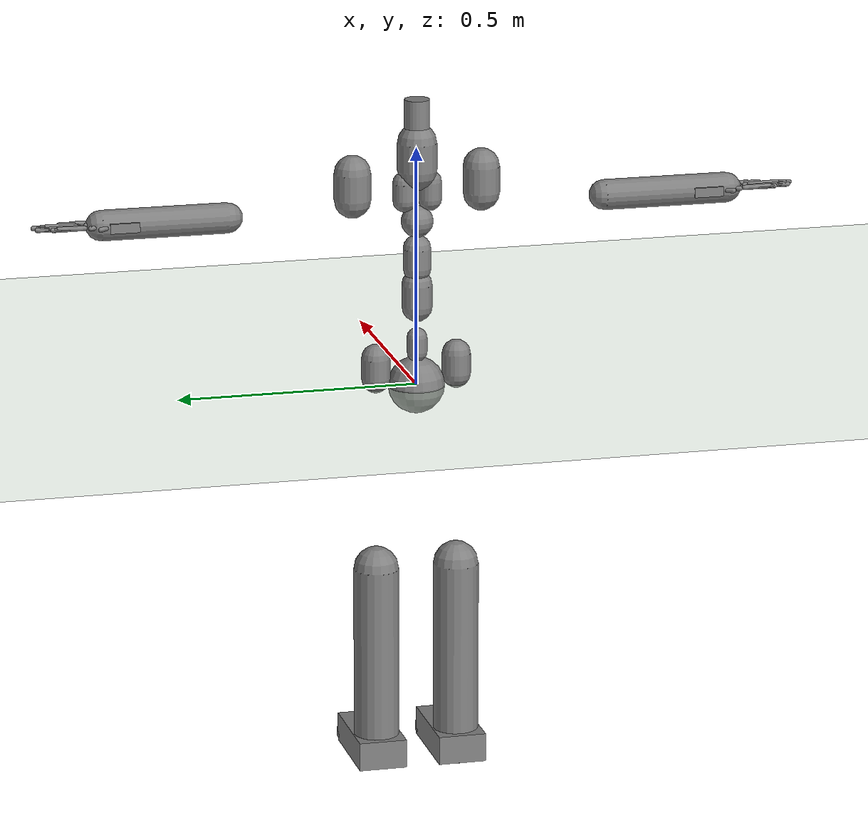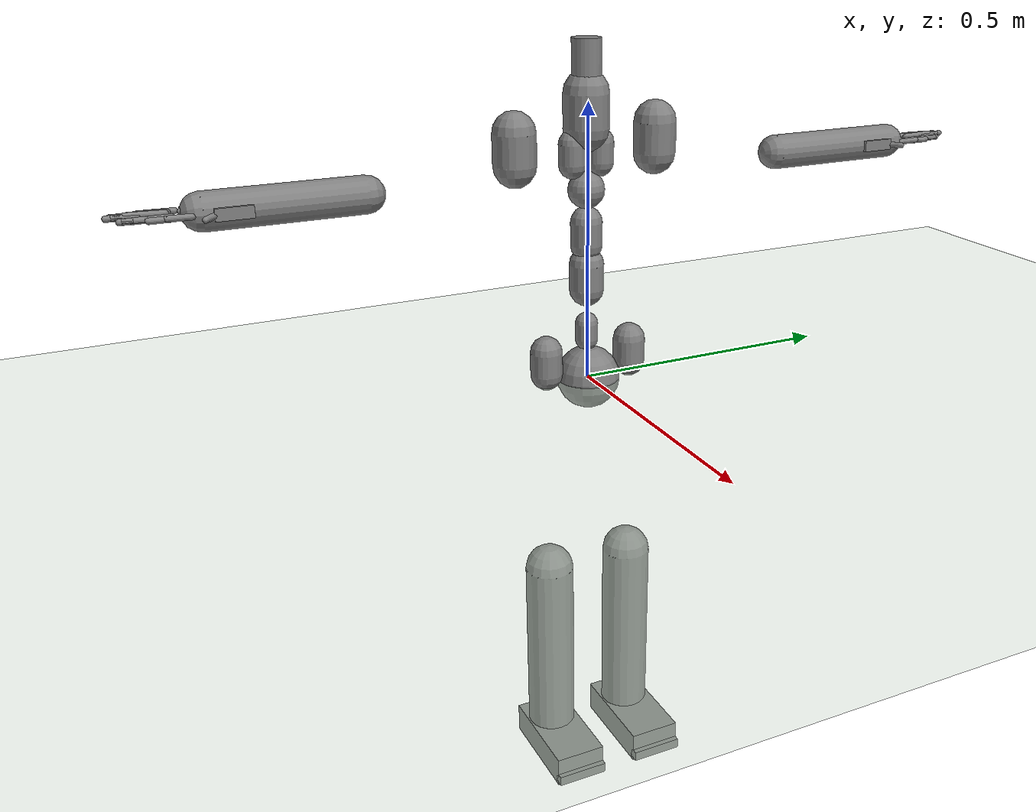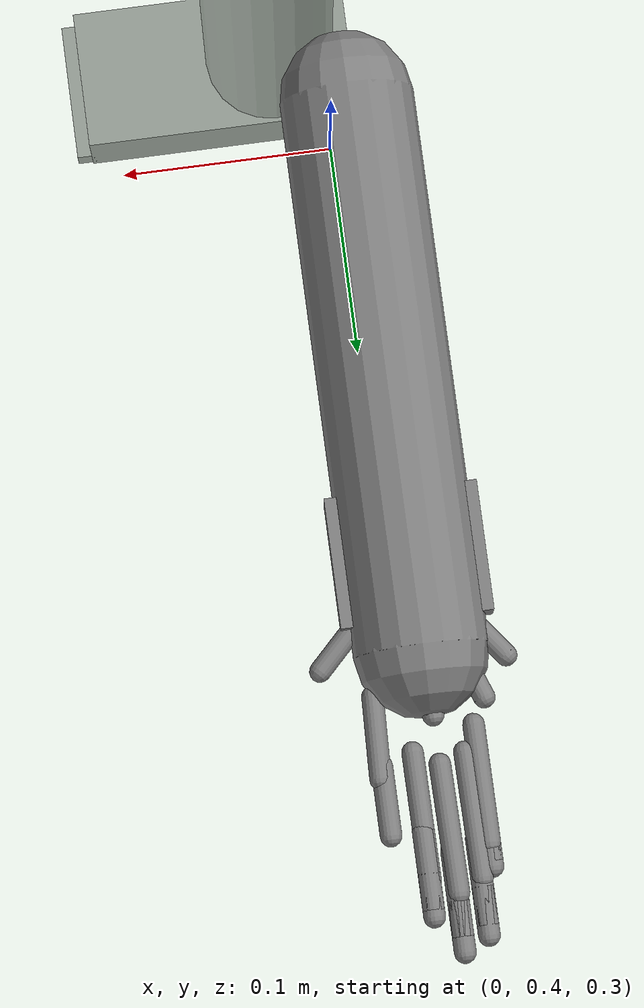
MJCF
<?xml version="1.0" ?>
<mujoco model="humanoid">
  <compiler coordinate="local"/>
  <statistic extent="2" center="0 0 1"/>
  <option timestep="0.00555"/>
  <default>
    <motor ctrlrange="-1 1" ctrllimited="true"/>
    <geom type="capsule" condim="1" friction="1.0 0.05 0.05" solimp=".9 .99 .003" solref=".015 1"/>
    <joint type="hinge" damping="0.1" stiffness="5" armature=".007" limited="true" solimplimit="0 .99 .01"/>
    <site size=".04" group="3"/>
  </default>
  <asset>
    <texture type="skybox" builtin="gradient" rgb1=".4 .5 .6" rgb2="0 0 0" width="100" height="100"/>
    <texture builtin="flat" height="1278" mark="cross" markrgb="1 1 1" name="texgeom" random="0.01" rgb1="0.8 0.6 0.4" rgb2="0.8 0.6 0.4" type="cube" width="127"/>
    <texture builtin="checker" height="100" name="texplane" rgb1="0 0 0" rgb2="0.8 0.8 0.8" type="2d" width="100"/>
    <material name="MatPlane" reflectance="0.5" shininess="1" specular="1" texrepeat="60 60" texture="texplane"/>
    <material name="geom" texture="texgeom" texuniform="true"/>
  </asset>
  <worldbody>
    <light cutoff="100" diffuse="1 1 1" dir="-0 0 -1.3" directional="true" exponent="1" pos="0 0 1.3" specular=".1 .1 .1"/>
    <geom conaffinity="1" condim="3" name="floor" pos="0 0 0" rgba="0.8 0.9 0.8 1" size="100 100 .2" type="plane" material="MatPlane"/>
    <body name="pHipOrigin" pos="0 0 0">
      <freejoint name="pHipOrigin"/>
      <geom type="sphere" contype="1" conaffinity="1" density="4629.6296296296305" size="0.05883" pos="0.0000 0.0000 -0.0000"/>
      <body name="jL5S1" pos="-0.00662915 0 0.05966214">
        <geom type="capsule" contype="1" conaffinity="1" density="1000" fromto="0 0 0.01201 0 0 0.04202" size="0.02101"/>
        <joint name="jL5S1_x" type="hinge" pos="0 0 0" axis="1 0 0" stiffness="500" damping="500" armature="0.02" range="-180.0000 180.0000"/>
        <joint name="jL5S1_y" type="hinge" pos="0 0 0" axis="0 1 0" stiffness="500" damping="500" armature="0.02" range="-180.0000 180.0000"/>
        <joint name="jL5S1_z" type="hinge" pos="0 0 0" axis="0 0 1" stiffness="500" damping="500" armature="0.02" range="-180.0000 180.0000"/>
        <body name="jL4L3" pos="0 0 0.09047320">
          <geom type="capsule" contype="1" conaffinity="1" density="1000" fromto="0 0 0.01809 0 0 0.06333" size="0.03167"/>
          <joint name="jL4L3_x" type="hinge" pos="0 0 0" axis="1 0 0" stiffness="500" damping="500" armature="0.02" range="-180.0000 180.0000"/>
          <joint name="jL4L3_y" type="hinge" pos="0 0 0" axis="0 1 0" stiffness="500" damping="500" armature="0.02" range="-180.0000 180.0000"/>
          <joint name="jL4L3_z" type="hinge" pos="0 0 0" axis="0 0 1" stiffness="500" damping="500" armature="0.02" range="-180.0000 180.0000"/>
          <body name="jL1T12" pos="-0.00063571 0 0.08239878">
            <geom type="capsule" contype="1" conaffinity="1" density="1000" fromto="0 0 0.01648 0 0 0.05768" size="0.02884"/>
            <joint name="jL1T12_x" type="hinge" pos="0 0 0" axis="1 0 0" stiffness="500" damping="500" armature="0.02" range="-180.0000 180.0000"/>
            <joint name="jL1T12_y" type="hinge" pos="0 0 0" axis="0 1 0" stiffness="500" damping="500" armature="0.02" range="-180.0000 180.0000"/>
            <joint name="jL1T12_z" type="hinge" pos="0 0 0" axis="0 0 1" stiffness="500" damping="500" armature="0.02" range="-180.0000 180.0000"/>
            <body name="jT9T8" pos="-0.00063820 0 0.08256188">
              <geom type="sphere" contype="1" conaffinity="1" density="1000" size="0.03303" pos="0.000 0.0000 0.033026"/>
              <joint name="jT9T8_x" type="hinge" pos="0 0 0" axis="1 0 0" stiffness="500" damping="500" armature="0.02" range="-180.0000 180.0000"/>
              <joint name="jT9T8_y" type="hinge" pos="0 0 0" axis="0 1 0" stiffness="500" damping="500" armature="0.02" range="-180.0000 180.0000"/>
              <joint name="jT9T8_z" type="hinge" pos="0 0 0" axis="0 0 1" stiffness="500" damping="500" armature="0.02" range="-180.0000 180.0000"/>
              <body name="jT1C7" pos="0 0 0.11602199">
                <geom type="capsule" contype="1" conaffinity="1" density="1000" fromto="0 0 0.02320 0 0 0.08122" size="0.04061"/>
                <joint name="jT1C7_x" type="hinge" pos="0 0 0" axis="1 0 0" stiffness="500" damping="500" armature="0.02" range="-180.0000 180.0000"/>
                <joint name="jT1C7_y" type="hinge" pos="0 0 0" axis="0 1 0" stiffness="500" damping="500" armature="0.02" range="-180.0000 180.0000"/>
                <joint name="jT1C7_z" type="hinge" pos="0 0 0" axis="0 0 1" stiffness="500" damping="500" armature="0.02" range="-180.0000 180.0000"/>
                <body name="jC1Head" pos="0.00101480 0 0.08601703">
                  <geom type="cylinder" contype="1" conaffinity="1" density="1000" fromto="0 0 0 0 0 0.08602" size="0.02581"/>
                  <joint name="jC1Head_x" type="hinge" pos="0 0 0" axis="1 0 0" stiffness="500" damping="500" armature="0.02" range="-180.0000 180.0000"/>
                  <joint name="jC1Head_y" type="hinge" pos="0 0 0" axis="0 1 0" stiffness="500" damping="500" armature="0.02" range="-180.0000 180.0000"/>
                  <joint name="jC1Head_z" type="hinge" pos="0 0 0" axis="0 0 1" stiffness="500" damping="500" armature="0.02" range="-180.0000 180.0000"/>
                </body>
              </body>
              <body name="jRightT4Shoulder" pos="0 -0.02661566 0.06489483">
                <geom type="capsule" contype="1" conaffinity="1" density="1000" fromto="0 0 0.01403 0 0 0.04910" size="0.02455"/>
                <joint name="jRightT4Shoulder_x" type="hinge" pos="0 0 0" axis="1 0 0" stiffness="500" damping="500" armature="0.02" range="-180.0000 180.0000"/>
                <joint name="jRightT4Shoulder_y" type="hinge" pos="0 0 0" axis="0 1 0" stiffness="500" damping="500" armature="0.02" range="-180.0000 180.0000"/>
                <joint name="jRightT4Shoulder_z" type="hinge" pos="0 0 0" axis="0 0 1" stiffness="500" damping="500" armature="0.02" range="-180.0000 180.0000"/>
                <body name="jRightShoulder" pos="0 -0.10811466 0">
                  <geom type="capsule" contype="1" conaffinity="1" density="1000" fromto="0 0 0.02162 0 0 0.07568" size="0.03784"/>
                  <joint name="jRightShoulder_x" type="hinge" pos="0 0 0" axis="1 0 0" stiffness="500" damping="500" armature="0.02" range="-180.0000 180.0000"/>
                  <joint name="jRightShoulder_y" type="hinge" pos="0 0 0" axis="0 1 0" stiffness="500" damping="500" armature="0.02" range="-180.0000 180.0000"/>
                  <joint name="jRightShoulder_z" type="hinge" pos="0 0 0" axis="0 0 1" stiffness="500" damping="500" armature="0.02" range="-180.0000 180.0000"/>
                  <body name="jRightElbow" pos="0 -0.25998172 0">
                    <geom type="capsule" contype="1" conaffinity="1" density="1000" fromto="0 0 0 0.00000000 -0.25998172 0.00000000" size="0.03120"/>
                    <joint name="jRightElbow_x" type="hinge" pos="0 0 0" axis="1 0 0" stiffness="500" damping="500" armature="0.02" range="-180.0000 180.0000"/>
                    <joint name="jRightElbow_y" type="hinge" pos="0 0 0" axis="0 1 0" stiffness="500" damping="500" armature="0.02" range="-180.0000 180.0000"/>
                    <joint name="jRightElbow_z" type="hinge" pos="0 0 0" axis="0 0 1" stiffness="500" damping="500" armature="0.02" range="-180.0000 180.0000"/>
                    <body name="jRightWrist" pos="0.00008662 -0.21521773 0">
                      <geom density="1000" type="box" pos="0 0 0" size="0.035 0.03 0.01" quat="1.0000 0.0000 0.0000 0.0000"/>
                      <joint name="jRightWrist_x" type="hinge" pos="0 0 0" axis="1 0 0" stiffness="500" damping="500" armature="0.02" range="-180.0000 180.0000"/>
                      <joint name="jRightWrist_y" type="hinge" pos="0 0 0" axis="0 1 0" stiffness="500" damping="500" armature="0.02" range="-180.0000 180.0000"/>
                      <joint name="jRightWrist_z" type="hinge" pos="0 0 0" axis="0 0 1" stiffness="500" damping="500" armature="0.02" range="-180.0000 180.0000"/>
                      <body name="jRightFirstCMC" pos="0.02382056 -0.02283335 -0.00107874">
                        <geom type="capsule" contype="1" conaffinity="1" density="1000" fromto="0 0 0 0.02382056 -0.02283335 -0.00107874" size="0.005"/>
                        <joint name="jRightFirstCMC_x" type="hinge" pos="0 0 0" axis="1 0 0" stiffness="500" damping="500" armature="0.02" range="-180.0000 180.0000"/>
                        <joint name="jRightFirstCMC_y" type="hinge" pos="0 0 0" axis="0 1 0" stiffness="500" damping="500" armature="0.02" range="-180.0000 180.0000"/>
                        <joint name="jRightFirstCMC_z" type="hinge" pos="0 0 0" axis="0 0 1" stiffness="500" damping="500" armature="0.02" range="-180.0000 180.0000"/>
                        <body name="jRightFirstMCP" pos="0.00134190 -0.03786742 0.00080014">
                          <geom type="capsule" contype="1" conaffinity="1" density="1000" fromto="0 0 0 0.00134190 -0.03786742 0.00080014" size="0.005"/>
                          <joint name="jRightFirstMCP_x" type="hinge" pos="0 0 0" axis="1 0 0" stiffness="500" damping="500" armature="0.02" range="-180.0000 180.0000"/>
                          <joint name="jRightFirstMCP_y" type="hinge" pos="0 0 0" axis="0 1 0" stiffness="500" damping="500" armature="0.02" range="-180.0000 180.0000"/>
                          <joint name="jRightFirstMCP_z" type="hinge" pos="0 0 0" axis="0 0 1" stiffness="500" damping="500" armature="0.02" range="-180.0000 180.0000"/>
                          <body name="jRightIP" pos="0 -0.03193852 0">
                            <geom type="capsule" contype="1" conaffinity="1" density="1000" fromto="0 0 0 0.00000000 -0.03193852 0.00000000" size="0.005"/>
                            <joint name="jRightIP_x" type="hinge" pos="0 0 0" axis="1 0 0" stiffness="500" damping="500" armature="0.02" range="-180.0000 180.0000"/>
                            <joint name="jRightIP_y" type="hinge" pos="0 0 0" axis="0 1 0" stiffness="500" damping="500" armature="0.02" range="-180.0000 180.0000"/>
                            <joint name="jRightIP_z" type="hinge" pos="0 0 0" axis="0 0 1" stiffness="500" damping="500" armature="0.02" range="-180.0000 180.0000"/>
                          </body>
                        </body>
                      </body>
                      <body name="jRightSecondCMC" pos="0.01017313 -0.02972267 -0.00051844">
                        <geom type="capsule" contype="1" conaffinity="1" density="1000" fromto="0 0 0 0.01017313 -0.02972267 -0.00051844" size="0.005"/>
                        <joint name="jRightSecondCMC_x" type="hinge" pos="0 0 0" axis="1 0 0" stiffness="500" damping="500" armature="0.02" range="-180.0000 180.0000"/>
                        <joint name="jRightSecondCMC_y" type="hinge" pos="0 0 0" axis="0 1 0" stiffness="500" damping="500" armature="0.02" range="-180.0000 180.0000"/>
                        <joint name="jRightSecondCMC_z" type="hinge" pos="0 0 0" axis="0 0 1" stiffness="500" damping="500" armature="0.02" range="-180.0000 180.0000"/>
                        <body name="jRightSecondMCP" pos="-0.00036993 -0.05900183 -0.00061204">
                          <geom type="capsule" contype="1" conaffinity="1" density="1000" fromto="0 0 0 -0.00036993 -0.05900183 -0.00061204" size="0.005"/>
                          <joint name="jRightSecondMCP_x" type="hinge" pos="0 0 0" axis="1 0 0" stiffness="500" damping="500" armature="0.02" range="-180.0000 180.0000"/>
                          <joint name="jRightSecondMCP_y" type="hinge" pos="0 0 0" axis="0 1 0" stiffness="500" damping="500" armature="0.02" range="-180.0000 180.0000"/>
                          <joint name="jRightSecondMCP_z" type="hinge" pos="0 0 0" axis="0 0 1" stiffness="500" damping="500" armature="0.02" range="-180.0000 180.0000"/>
                          <body name="jRightSecondPIP" pos="0 -0.03589189 0">
                            <geom type="capsule" contype="1" conaffinity="1" density="1000" fromto="0 0 0 0.00000000 -0.03589189 0.00000000" size="0.005"/>
                            <joint name="jRightSecondPIP_x" type="hinge" pos="0 0 0" axis="1 0 0" stiffness="500" damping="500" armature="0.02" range="-180.0000 180.0000"/>
                            <joint name="jRightSecondPIP_y" type="hinge" pos="0 0 0" axis="0 1 0" stiffness="500" damping="500" armature="0.02" range="-180.0000 180.0000"/>
                            <joint name="jRightSecondPIP_z" type="hinge" pos="0 0 0" axis="0 0 1" stiffness="500" damping="500" armature="0.02" range="-180.0000 180.0000"/>
                            <body name="jRightSecondDIP" pos="0 -0.01957870 0">
                              <geom type="capsule" contype="1" conaffinity="1" density="1000" fromto="0 0 0 0.00000000 -0.01957870 0.00000000" size="0.005"/>
                              <joint name="jRightSecondDIP_x" type="hinge" pos="0 0 0" axis="1 0 0" stiffness="500" damping="500" armature="0.02" range="-180.0000 180.0000"/>
                              <joint name="jRightSecondDIP_y" type="hinge" pos="0 0 0" axis="0 1 0" stiffness="500" damping="500" armature="0.02" range="-180.0000 180.0000"/>
                              <joint name="jRightSecondDIP_z" type="hinge" pos="0 0 0" axis="0 0 1" stiffness="500" damping="500" armature="0.02" range="-180.0000 180.0000"/>
                            </body>
                          </body>
                        </body>
                      </body>
                      <body name="jRightThirdCMC" pos="-0.00068021 -0.03678439 0.00154647">
                        <geom type="capsule" contype="1" conaffinity="1" density="1000" fromto="0 0 0 -0.00068021 -0.03678439 0.00154647" size="0.005"/>
                        <joint name="jRightThirdCMC_x" type="hinge" pos="0 0 0" axis="1 0 0" stiffness="500" damping="500" armature="0.02" range="-180.0000 180.0000"/>
                        <joint name="jRightThirdCMC_y" type="hinge" pos="0 0 0" axis="0 1 0" stiffness="500" damping="500" armature="0.02" range="-180.0000 180.0000"/>
                        <joint name="jRightThirdCMC_z" type="hinge" pos="0 0 0" axis="0 0 1" stiffness="500" damping="500" armature="0.02" range="-180.0000 180.0000"/>
                        <body name="jRightThirdMCP" pos="-0.00071159 -0.05895533 0.00160395">
                          <geom type="capsule" contype="1" conaffinity="1" density="1000" fromto="0 0 0 -0.00071159 -0.05895533 0.00160395" size="0.005"/>
                          <joint name="jRightThirdMCP_x" type="hinge" pos="0 0 0" axis="1 0 0" stiffness="500" damping="500" armature="0.02" range="-180.0000 180.0000"/>
                          <joint name="jRightThirdMCP_y" type="hinge" pos="0 0 0" axis="0 1 0" stiffness="500" damping="500" armature="0.02" range="-180.0000 180.0000"/>
                          <joint name="jRightThirdMCP_z" type="hinge" pos="0 0 0" axis="0 0 1" stiffness="500" damping="500" armature="0.02" range="-180.0000 180.0000"/>
                          <body name="jRightThirdPIP" pos="0 -0.03923096 0">
                            <geom type="capsule" contype="1" conaffinity="1" density="1000" fromto="0 0 0 0.00000000 -0.03923096 0.00000000" size="0.005"/>
                            <joint name="jRightThirdPIP_x" type="hinge" pos="0 0 0" axis="1 0 0" stiffness="500" damping="500" armature="0.02" range="-180.0000 180.0000"/>
                            <joint name="jRightThirdPIP_y" type="hinge" pos="0 0 0" axis="0 1 0" stiffness="500" damping="500" armature="0.02" range="-180.0000 180.0000"/>
                            <joint name="jRightThirdPIP_z" type="hinge" pos="0 0 0" axis="0 0 1" stiffness="500" damping="500" armature="0.02" range="-180.0000 180.0000"/>
                            <body name="jRightThirdDIP" pos="0 -0.02320820 0">
                              <geom type="capsule" contype="1" conaffinity="1" density="1000" fromto="0 0 0 0.00000000 -0.02320820 0.00000000" size="0.005"/>
                              <joint name="jRightThirdDIP_x" type="hinge" pos="0 0 0" axis="1 0 0" stiffness="500" damping="500" armature="0.02" range="-180.0000 180.0000"/>
                              <joint name="jRightThirdDIP_y" type="hinge" pos="0 0 0" axis="0 1 0" stiffness="500" damping="500" armature="0.02" range="-180.0000 180.0000"/>
                              <joint name="jRightThirdDIP_z" type="hinge" pos="0 0 0" axis="0 0 1" stiffness="500" damping="500" armature="0.02" range="-180.0000 180.0000"/>
                            </body>
                          </body>
                        </body>
                      </body>
                      <body name="jRightFourthCMC" pos="-0.01232893 -0.03433810 0.00080827">
                        <geom type="capsule" contype="1" conaffinity="1" density="1000" fromto="0 0 0 -0.01232893 -0.03433810 0.00080827" size="0.005"/>
                        <joint name="jRightFourthCMC_x" type="hinge" pos="0 0 0" axis="1 0 0" stiffness="500" damping="500" armature="0.02" range="-180.0000 180.0000"/>
                        <joint name="jRightFourthCMC_y" type="hinge" pos="0 0 0" axis="0 1 0" stiffness="500" damping="500" armature="0.02" range="-180.0000 180.0000"/>
                        <joint name="jRightFourthCMC_z" type="hinge" pos="0 0 0" axis="0 0 1" stiffness="500" damping="500" armature="0.02" range="-180.0000 180.0000"/>
                        <body name="jRightFourthMCP" pos="-0.00041919 -0.05745450 0.00090266">
                          <geom type="capsule" contype="1" conaffinity="1" density="1000" fromto="0 0 0 -0.00041919 -0.05745450 0.00090266" size="0.005"/>
                          <joint name="jRightFourthMCP_x" type="hinge" pos="0 0 0" axis="1 0 0" stiffness="500" damping="500" armature="0.02" range="-180.0000 180.0000"/>
                          <joint name="jRightFourthMCP_y" type="hinge" pos="0 0 0" axis="0 1 0" stiffness="500" damping="500" armature="0.02" range="-180.0000 180.0000"/>
                          <joint name="jRightFourthMCP_z" type="hinge" pos="0 0 0" axis="0 0 1" stiffness="500" damping="500" armature="0.02" range="-180.0000 180.0000"/>
                          <body name="jRightFourthPIP" pos="0 -0.03938530 0">
                            <geom type="capsule" contype="1" conaffinity="1" density="1000" fromto="0 0 0 0.00000000 -0.03938530 0.00000000" size="0.005"/>
                            <joint name="jRightFourthPIP_x" type="hinge" pos="0 0 0" axis="1 0 0" stiffness="500" damping="500" armature="0.02" range="-180.0000 180.0000"/>
                            <joint name="jRightFourthPIP_y" type="hinge" pos="0 0 0" axis="0 1 0" stiffness="500" damping="500" armature="0.02" range="-180.0000 180.0000"/>
                            <joint name="jRightFourthPIP_z" type="hinge" pos="0 0 0" axis="0 0 1" stiffness="500" damping="500" armature="0.02" range="-180.0000 180.0000"/>
                            <body name="jRightFourthDIP" pos="0 -0.02209246 0">
                              <geom type="capsule" contype="1" conaffinity="1" density="1000" fromto="0 0 0 0.00000000 -0.02209246 0.00000000" size="0.005"/>
                              <joint name="jRightFourthDIP_x" type="hinge" pos="0 0 0" axis="1 0 0" stiffness="500" damping="500" armature="0.02" range="-180.0000 180.0000"/>
                              <joint name="jRightFourthDIP_y" type="hinge" pos="0 0 0" axis="0 1 0" stiffness="500" damping="500" armature="0.02" range="-180.0000 180.0000"/>
                              <joint name="jRightFourthDIP_z" type="hinge" pos="0 0 0" axis="0 0 1" stiffness="500" damping="500" armature="0.02" range="-180.0000 180.0000"/>
                            </body>
                          </body>
                        </body>
                      </body>
                      <body name="jRightFifthCMC" pos="-0.01845730 -0.02571814 0.00050734">
                        <geom type="capsule" contype="1" conaffinity="1" density="1000" fromto="0 0 0 -0.01845730 -0.02571814 0.00050734" size="0.005"/>
                        <joint name="jRightFifthCMC_x" type="hinge" pos="0 0 0" axis="1 0 0" stiffness="500" damping="500" armature="0.02" range="-180.0000 180.0000"/>
                        <joint name="jRightFifthCMC_y" type="hinge" pos="0 0 0" axis="0 1 0" stiffness="500" damping="500" armature="0.02" range="-180.0000 180.0000"/>
                        <joint name="jRightFifthCMC_z" type="hinge" pos="0 0 0" axis="0 0 1" stiffness="500" damping="500" armature="0.02" range="-180.0000 180.0000"/>
                        <body name="jRightFifthMCP" pos="-0.00000803 -0.05437287 0.00074824">
                          <geom type="capsule" contype="1" conaffinity="1" density="1000" fromto="0 0 0 -0.00000803 -0.05437287 0.00074824" size="0.005"/>
                          <joint name="jRightFifthMCP_x" type="hinge" pos="0 0 0" axis="1 0 0" stiffness="500" damping="500" armature="0.02" range="-180.0000 180.0000"/>
                          <joint name="jRightFifthMCP_y" type="hinge" pos="0 0 0" axis="0 1 0" stiffness="500" damping="500" armature="0.02" range="-180.0000 180.0000"/>
                          <joint name="jRightFifthMCP_z" type="hinge" pos="0 0 0" axis="0 0 1" stiffness="500" damping="500" armature="0.02" range="-180.0000 180.0000"/>
                          <body name="jRightFifthPIP" pos="0 -0.03120765 0">
                            <geom type="capsule" contype="1" conaffinity="1" density="1000" fromto="0 0 0 0.00000000 -0.03120765 0.00000000" size="0.005"/>
                            <joint name="jRightFifthPIP_x" type="hinge" pos="0 0 0" axis="1 0 0" stiffness="500" damping="500" armature="0.02" range="-180.0000 180.0000"/>
                            <joint name="jRightFifthPIP_y" type="hinge" pos="0 0 0" axis="0 1 0" stiffness="500" damping="500" armature="0.02" range="-180.0000 180.0000"/>
                            <joint name="jRightFifthPIP_z" type="hinge" pos="0 0 0" axis="0 0 1" stiffness="500" damping="500" armature="0.02" range="-180.0000 180.0000"/>
                            <body name="jRightFifthDIP" pos="0 -0.01690737 0">
                              <geom type="capsule" contype="1" conaffinity="1" density="1000" fromto="0 0 0 0.00000000 -0.01690737 0.00000000" size="0.005"/>
                              <joint name="jRightFifthDIP_x" type="hinge" pos="0 0 0" axis="1 0 0" stiffness="500" damping="500" armature="0.02" range="-180.0000 180.0000"/>
                              <joint name="jRightFifthDIP_y" type="hinge" pos="0 0 0" axis="0 1 0" stiffness="500" damping="500" armature="0.02" range="-180.0000 180.0000"/>
                              <joint name="jRightFifthDIP_z" type="hinge" pos="0 0 0" axis="0 0 1" stiffness="500" damping="500" armature="0.02" range="-180.0000 180.0000"/>
                            </body>
                          </body>
                        </body>
                      </body>
                    </body>
                  </body>
                </body>
              </body>
              <body name="jLeftT4Shoulder" pos="0 0.02659525 0.06484507">
                <geom type="capsule" contype="1" conaffinity="1" density="1000" fromto="0 0 0.01402 0 0 0.04906" size="0.02453"/>
                <joint name="jLeftT4Shoulder_x" type="hinge" pos="0 0 0" axis="1 0 0" stiffness="500" damping="500" armature="0.02" range="-180.0000 180.0000"/>
                <joint name="jLeftT4Shoulder_y" type="hinge" pos="0 0 0" axis="0 1 0" stiffness="500" damping="500" armature="0.02" range="-180.0000 180.0000"/>
                <joint name="jLeftT4Shoulder_z" type="hinge" pos="0 0 0" axis="0 0 1" stiffness="500" damping="500" armature="0.02" range="-180.0000 180.0000"/>
                <body name="jLeftShoulder" pos="0 0.10854474 0">
                  <geom type="capsule" contype="1" conaffinity="1" density="1000" fromto="0 0 0.02171 0 0 0.07598" size="0.03799"/>
                  <joint name="jLeftShoulder_x" type="hinge" pos="0 0 0" axis="1 0 0" stiffness="500" damping="500" armature="0.02" range="-180.0000 180.0000"/>
                  <joint name="jLeftShoulder_y" type="hinge" pos="0 0 0" axis="0 1 0" stiffness="500" damping="500" armature="0.02" range="-180.0000 180.0000"/>
                  <joint name="jLeftShoulder_z" type="hinge" pos="0 0 0" axis="0 0 1" stiffness="500" damping="500" armature="0.02" range="-180.0000 180.0000"/>
                  <body name="jLeftElbow" pos="0 0.25955233 0">
                    <geom type="capsule" contype="1" conaffinity="1" density="1000" fromto="0 0 0 0.00000000 0.25955233 0.00000000" size="0.03115"/>
                    <joint name="jLeftElbow_x" type="hinge" pos="0 0 0" axis="1 0 0" stiffness="500" damping="500" armature="0.02" range="-180.0000 180.0000"/>
                    <joint name="jLeftElbow_y" type="hinge" pos="0 0 0" axis="0 1 0" stiffness="500" damping="500" armature="0.02" range="-180.0000 180.0000"/>
                    <joint name="jLeftElbow_z" type="hinge" pos="0 0 0" axis="0 0 1" stiffness="500" damping="500" armature="0.02" range="-180.0000 180.0000"/>
                    <body name="jLeftWrist" pos="0.00008698 0.21610794 0">
                      <geom density="1000" type="box" pos="0 0 0" size="0.035 0.03 0.01" quat="1.0000 0.0000 0.0000 0.0000"/>
                      <joint name="jLeftWrist_x" type="hinge" pos="0 0 0" axis="1 0 0" stiffness="500" damping="500" armature="0.02" range="-180.0000 180.0000"/>
                      <joint name="jLeftWrist_y" type="hinge" pos="0 0 0" axis="0 1 0" stiffness="500" damping="500" armature="0.02" range="-180.0000 180.0000"/>
                      <joint name="jLeftWrist_z" type="hinge" pos="0 0 0" axis="0 0 1" stiffness="500" damping="500" armature="0.02" range="-180.0000 180.0000"/>
                      <body name="jLeftFirstCMC" pos="0.02331472 0.02336978 -0.00104349">
                        <geom type="capsule" contype="1" conaffinity="1" density="1000" fromto="0 0 0 0.02331472 0.02336978 -0.00104349" size="0.005"/>
                        <joint name="jLeftFirstCMC_x" type="hinge" pos="0 0 0" axis="1 0 0" stiffness="500" damping="500" armature="0.02" range="-180.0000 180.0000"/>
                        <joint name="jLeftFirstCMC_y" type="hinge" pos="0 0 0" axis="0 1 0" stiffness="500" damping="500" armature="0.02" range="-180.0000 180.0000"/>
                        <joint name="jLeftFirstCMC_z" type="hinge" pos="0 0 0" axis="0 0 1" stiffness="500" damping="500" armature="0.02" range="-180.0000 180.0000"/>
                        <body name="jLeftFirstMCP" pos="0.00132897 0.03786657 0.00077976">
                          <geom type="capsule" contype="1" conaffinity="1" density="1000" fromto="0 0 0 0.00132897 0.03786657 0.00077976" size="0.005"/>
                          <joint name="jLeftFirstMCP_x" type="hinge" pos="0 0 0" axis="1 0 0" stiffness="500" damping="500" armature="0.02" range="-180.0000 180.0000"/>
                          <joint name="jLeftFirstMCP_y" type="hinge" pos="0 0 0" axis="0 1 0" stiffness="500" damping="500" armature="0.02" range="-180.0000 180.0000"/>
                          <joint name="jLeftFirstMCP_z" type="hinge" pos="0 0 0" axis="0 0 1" stiffness="500" damping="500" armature="0.02" range="-180.0000 180.0000"/>
                          <body name="jLeftIP" pos="0 0.03193852 0">
                            <geom type="capsule" contype="1" conaffinity="1" density="1000" fromto="0 0 0 0.00000000 0.03193852 0.00000000" size="0.005"/>
                            <joint name="jLeftIP_x" type="hinge" pos="0 0 0" axis="1 0 0" stiffness="500" damping="500" armature="0.02" range="-180.0000 180.0000"/>
                            <joint name="jLeftIP_y" type="hinge" pos="0 0 0" axis="0 1 0" stiffness="500" damping="500" armature="0.02" range="-180.0000 180.0000"/>
                            <joint name="jLeftIP_z" type="hinge" pos="0 0 0" axis="0 0 1" stiffness="500" damping="500" armature="0.02" range="-180.0000 180.0000"/>
                          </body>
                        </body>
                      </body>
                      <body name="jLeftSecondCMC" pos="0.01029031 0.02966798 -0.00052272">
                        <geom type="capsule" contype="1" conaffinity="1" density="1000" fromto="0 0 0 0.01029031 0.02966798 -0.00052272" size="0.005"/>
                        <joint name="jLeftSecondCMC_x" type="hinge" pos="0 0 0" axis="1 0 0" stiffness="500" damping="500" armature="0.02" range="-180.0000 180.0000"/>
                        <joint name="jLeftSecondCMC_y" type="hinge" pos="0 0 0" axis="0 1 0" stiffness="500" damping="500" armature="0.02" range="-180.0000 180.0000"/>
                        <joint name="jLeftSecondCMC_z" type="hinge" pos="0 0 0" axis="0 0 1" stiffness="500" damping="500" armature="0.02" range="-180.0000 180.0000"/>
                        <body name="jLeftSecondMCP" pos="-0.00032256 0.05900304 -0.00061961">
                          <geom type="capsule" contype="1" conaffinity="1" density="1000" fromto="0 0 0 -0.00032256 0.05900304 -0.00061961" size="0.005"/>
                          <joint name="jLeftSecondMCP_x" type="hinge" pos="0 0 0" axis="1 0 0" stiffness="500" damping="500" armature="0.02" range="-180.0000 180.0000"/>
                          <joint name="jLeftSecondMCP_y" type="hinge" pos="0 0 0" axis="0 1 0" stiffness="500" damping="500" armature="0.02" range="-180.0000 180.0000"/>
                          <joint name="jLeftSecondMCP_z" type="hinge" pos="0 0 0" axis="0 0 1" stiffness="500" damping="500" armature="0.02" range="-180.0000 180.0000"/>
                          <body name="jLeftSecondPIP" pos="0 0.03589189 0">
                            <geom type="capsule" contype="1" conaffinity="1" density="1000" fromto="0 0 0 0.00000000 0.03589189 0.00000000" size="0.005"/>
                            <joint name="jLeftSecondPIP_x" type="hinge" pos="0 0 0" axis="1 0 0" stiffness="500" damping="500" armature="0.02" range="-180.0000 180.0000"/>
                            <joint name="jLeftSecondPIP_y" type="hinge" pos="0 0 0" axis="0 1 0" stiffness="500" damping="500" armature="0.02" range="-180.0000 180.0000"/>
                            <joint name="jLeftSecondPIP_z" type="hinge" pos="0 0 0" axis="0 0 1" stiffness="500" damping="500" armature="0.02" range="-180.0000 180.0000"/>
                            <body name="jLeftSecondDIP" pos="0 0.01957870 0">
                              <geom type="capsule" contype="1" conaffinity="1" density="1000" fromto="0 0 0 0.00000000 0.01957870 0.00000000" size="0.005"/>
                              <joint name="jLeftSecondDIP_x" type="hinge" pos="0 0 0" axis="1 0 0" stiffness="500" damping="500" armature="0.02" range="-180.0000 180.0000"/>
                              <joint name="jLeftSecondDIP_y" type="hinge" pos="0 0 0" axis="0 1 0" stiffness="500" damping="500" armature="0.02" range="-180.0000 180.0000"/>
                              <joint name="jLeftSecondDIP_z" type="hinge" pos="0 0 0" axis="0 0 1" stiffness="500" damping="500" armature="0.02" range="-180.0000 180.0000"/>
                            </body>
                          </body>
                        </body>
                      </body>
                      <body name="jLeftThirdCMC" pos="-0.00068421 0.03678770 0.00149492">
                        <geom type="capsule" contype="1" conaffinity="1" density="1000" fromto="0 0 0 -0.00068421 0.03678770 0.00149492" size="0.005"/>
                        <joint name="jLeftThirdCMC_x" type="hinge" pos="0 0 0" axis="1 0 0" stiffness="500" damping="500" armature="0.02" range="-180.0000 180.0000"/>
                        <joint name="jLeftThirdCMC_y" type="hinge" pos="0 0 0" axis="0 1 0" stiffness="500" damping="500" armature="0.02" range="-180.0000 180.0000"/>
                        <joint name="jLeftThirdCMC_z" type="hinge" pos="0 0 0" axis="0 0 1" stiffness="500" damping="500" armature="0.02" range="-180.0000 180.0000"/>
                        <body name="jLeftThirdMCP" pos="-0.00071733 0.05895648 0.00157170">
                          <geom type="capsule" contype="1" conaffinity="1" density="1000" fromto="0 0 0 -0.00071733 0.05895648 0.00157170" size="0.005"/>
                          <joint name="jLeftThirdMCP_x" type="hinge" pos="0 0 0" axis="1 0 0" stiffness="500" damping="500" armature="0.02" range="-180.0000 180.0000"/>
                          <joint name="jLeftThirdMCP_y" type="hinge" pos="0 0 0" axis="0 1 0" stiffness="500" damping="500" armature="0.02" range="-180.0000 180.0000"/>
                          <joint name="jLeftThirdMCP_z" type="hinge" pos="0 0 0" axis="0 0 1" stiffness="500" damping="500" armature="0.02" range="-180.0000 180.0000"/>
                          <body name="jLeftThirdPIP" pos="0 0.03923096 0">
                            <geom type="capsule" contype="1" conaffinity="1" density="1000" fromto="0 0 0 0.00000000 0.03923096 0.00000000" size="0.005"/>
                            <joint name="jLeftThirdPIP_x" type="hinge" pos="0 0 0" axis="1 0 0" stiffness="500" damping="500" armature="0.02" range="-180.0000 180.0000"/>
                            <joint name="jLeftThirdPIP_y" type="hinge" pos="0 0 0" axis="0 1 0" stiffness="500" damping="500" armature="0.02" range="-180.0000 180.0000"/>
                            <joint name="jLeftThirdPIP_z" type="hinge" pos="0 0 0" axis="0 0 1" stiffness="500" damping="500" armature="0.02" range="-180.0000 180.0000"/>
                            <body name="jLeftThirdDIP" pos="0 0.02320820 0">
                              <geom type="capsule" contype="1" conaffinity="1" density="1000" fromto="0 0 0 0.00000000 0.02320820 0.00000000" size="0.005"/>
                              <joint name="jLeftThirdDIP_x" type="hinge" pos="0 0 0" axis="1 0 0" stiffness="500" damping="500" armature="0.02" range="-180.0000 180.0000"/>
                              <joint name="jLeftThirdDIP_y" type="hinge" pos="0 0 0" axis="0 1 0" stiffness="500" damping="500" armature="0.02" range="-180.0000 180.0000"/>
                              <joint name="jLeftThirdDIP_z" type="hinge" pos="0 0 0" axis="0 0 1" stiffness="500" damping="500" armature="0.02" range="-180.0000 180.0000"/>
                            </body>
                          </body>
                        </body>
                      </body>
                      <body name="jLeftFourthCMC" pos="-0.01278132 0.03416246 0.00086282">
                        <geom type="capsule" contype="1" conaffinity="1" density="1000" fromto="0 0 0 -0.01278132 0.03416246 0.00086282" size="0.005"/>
                        <joint name="jLeftFourthCMC_x" type="hinge" pos="0 0 0" axis="1 0 0" stiffness="500" damping="500" armature="0.02" range="-180.0000 180.0000"/>
                        <joint name="jLeftFourthCMC_y" type="hinge" pos="0 0 0" axis="0 1 0" stiffness="500" damping="500" armature="0.02" range="-180.0000 180.0000"/>
                        <joint name="jLeftFourthCMC_z" type="hinge" pos="0 0 0" axis="0 0 1" stiffness="500" damping="500" armature="0.02" range="-180.0000 180.0000"/>
                        <body name="jLeftFourthMCP" pos="-0.00045080 0.05745121 0.00095466">
                          <geom type="capsule" contype="1" conaffinity="1" density="1000" fromto="0 0 0 -0.00045080 0.05745121 0.00095466" size="0.005"/>
                          <joint name="jLeftFourthMCP_x" type="hinge" pos="0 0 0" axis="1 0 0" stiffness="500" damping="500" armature="0.02" range="-180.0000 180.0000"/>
                          <joint name="jLeftFourthMCP_y" type="hinge" pos="0 0 0" axis="0 1 0" stiffness="500" damping="500" armature="0.02" range="-180.0000 180.0000"/>
                          <joint name="jLeftFourthMCP_z" type="hinge" pos="0 0 0" axis="0 0 1" stiffness="500" damping="500" armature="0.02" range="-180.0000 180.0000"/>
                          <body name="jLeftFourthPIP" pos="0 0.03938530 0">
                            <geom type="capsule" contype="1" conaffinity="1" density="1000" fromto="0 0 0 0.00000000 0.03938530 0.00000000" size="0.005"/>
                            <joint name="jLeftFourthPIP_x" type="hinge" pos="0 0 0" axis="1 0 0" stiffness="500" damping="500" armature="0.02" range="-180.0000 180.0000"/>
                            <joint name="jLeftFourthPIP_y" type="hinge" pos="0 0 0" axis="0 1 0" stiffness="500" damping="500" armature="0.02" range="-180.0000 180.0000"/>
                            <joint name="jLeftFourthPIP_z" type="hinge" pos="0 0 0" axis="0 0 1" stiffness="500" damping="500" armature="0.02" range="-180.0000 180.0000"/>
                            <body name="jLeftFourthDIP" pos="0 0.02209246 0">
                              <geom type="capsule" contype="1" conaffinity="1" density="1000" fromto="0 0 0 0.00000000 0.02209246 0.00000000" size="0.005"/>
                              <joint name="jLeftFourthDIP_x" type="hinge" pos="0 0 0" axis="1 0 0" stiffness="500" damping="500" armature="0.02" range="-180.0000 180.0000"/>
                              <joint name="jLeftFourthDIP_y" type="hinge" pos="0 0 0" axis="0 1 0" stiffness="500" damping="500" armature="0.02" range="-180.0000 180.0000"/>
                              <joint name="jLeftFourthDIP_z" type="hinge" pos="0 0 0" axis="0 0 1" stiffness="500" damping="500" armature="0.02" range="-180.0000 180.0000"/>
                            </body>
                          </body>
                        </body>
                      </body>
                      <body name="jLeftFifthCMC" pos="-0.01901644 0.02531156 0.00051549">
                        <geom type="capsule" contype="1" conaffinity="1" density="1000" fromto="0 0 0 -0.01901644 0.02531156 0.00051549" size="0.005"/>
                        <joint name="jLeftFifthCMC_x" type="hinge" pos="0 0 0" axis="1 0 0" stiffness="500" damping="500" armature="0.02" range="-180.0000 180.0000"/>
                        <joint name="jLeftFifthCMC_y" type="hinge" pos="0 0 0" axis="0 1 0" stiffness="500" damping="500" armature="0.02" range="-180.0000 180.0000"/>
                        <joint name="jLeftFifthCMC_z" type="hinge" pos="0 0 0" axis="0 0 1" stiffness="500" damping="500" armature="0.02" range="-180.0000 180.0000"/>
                        <body name="jLeftFifthMCP" pos="-0.00001542 0.05437139 0.00078237">
                          <geom type="capsule" contype="1" conaffinity="1" density="1000" fromto="0 0 0 -0.00001542 0.05437139 0.00078237" size="0.005"/>
                          <joint name="jLeftFifthMCP_x" type="hinge" pos="0 0 0" axis="1 0 0" stiffness="500" damping="500" armature="0.02" range="-180.0000 180.0000"/>
                          <joint name="jLeftFifthMCP_y" type="hinge" pos="0 0 0" axis="0 1 0" stiffness="500" damping="500" armature="0.02" range="-180.0000 180.0000"/>
                          <joint name="jLeftFifthMCP_z" type="hinge" pos="0 0 0" axis="0 0 1" stiffness="500" damping="500" armature="0.02" range="-180.0000 180.0000"/>
                          <body name="jLeftFifthPIP" pos="0 0.03120765 0">
                            <geom type="capsule" contype="1" conaffinity="1" density="1000" fromto="0 0 0 0.00000000 0.03120765 0.00000000" size="0.005"/>
                            <joint name="jLeftFifthPIP_x" type="hinge" pos="0 0 0" axis="1 0 0" stiffness="500" damping="500" armature="0.02" range="-180.0000 180.0000"/>
                            <joint name="jLeftFifthPIP_y" type="hinge" pos="0 0 0" axis="0 1 0" stiffness="500" damping="500" armature="0.02" range="-180.0000 180.0000"/>
                            <joint name="jLeftFifthPIP_z" type="hinge" pos="0 0 0" axis="0 0 1" stiffness="500" damping="500" armature="0.02" range="-180.0000 180.0000"/>
                            <body name="jLeftFifthDIP" pos="0 0.01690737 0">
                              <geom type="capsule" contype="1" conaffinity="1" density="1000" fromto="0 0 0 0.00000000 0.01690737 0.00000000" size="0.005"/>
                              <joint name="jLeftFifthDIP_x" type="hinge" pos="0 0 0" axis="1 0 0" stiffness="500" damping="500" armature="0.02" range="-180.0000 180.0000"/>
                              <joint name="jLeftFifthDIP_y" type="hinge" pos="0 0 0" axis="0 1 0" stiffness="500" damping="500" armature="0.02" range="-180.0000 180.0000"/>
                              <joint name="jLeftFifthDIP_z" type="hinge" pos="0 0 0" axis="0 0 1" stiffness="500" damping="500" armature="0.02" range="-180.0000 180.0000"/>
                            </body>
                          </body>
                        </body>
                      </body>
                    </body>
                  </body>
                </body>
              </body>
            </body>
          </body>
        </body>
      </body>
      <body name="jRightHip" pos="-0.00014293 -0.08482368 0.00128675">
        <geom type="capsule" contype="1" conaffinity="1" density="1000" fromto="0 0 0.01697 0 0 0.05938" size="0.02969"/>
        <joint name="jRightHip_x" type="hinge" pos="0 0 0" axis="1 0 0" stiffness="500" damping="500" armature="0.02" range="-180.0000 180.0000"/>
        <joint name="jRightHip_y" type="hinge" pos="0 0 0" axis="0 1 0" stiffness="500" damping="500" armature="0.02" range="-180.0000 180.0000"/>
        <joint name="jRightHip_z" type="hinge" pos="0 0 0" axis="0 0 1" stiffness="500" damping="500" armature="0.02" range="-180.0000 180.0000"/>
        <body name="jRightKnee" pos="0.00004695 0 -0.39379745">
          <geom type="capsule" contype="1" conaffinity="1" density="1000" fromto="0 0 0 0.00004695 0.00000000 -0.39379745" size="0.04726"/>
          <joint name="jRightKnee_x" type="hinge" pos="0 0 0" axis="1 0 0" stiffness="500" damping="500" armature="0.02" range="-180.0000 180.0000"/>
          <joint name="jRightKnee_y" type="hinge" pos="0 0 0" axis="0 1 0" stiffness="500" damping="500" armature="0.02" range="-180.0000 180.0000"/>
          <joint name="jRightKnee_z" type="hinge" pos="0 0 0" axis="0 0 1" stiffness="500" damping="500" armature="0.02" range="-180.0000 180.0000"/>
          <body name="jRightAnkle" pos="0.00040769 0 -0.36105770">
            <geom density="1000" type="box" pos="0.04 0. -0.03" size="0.1 0.05 0.03" quat="1.0 0 0 0"/>
            <joint name="jRightAnkle_x" type="hinge" pos="0 0 0" axis="1 0 0" stiffness="500" damping="500" armature="0.02" range="-180.0000 180.0000"/>
            <joint name="jRightAnkle_y" type="hinge" pos="0 0 0" axis="0 1 0" stiffness="500" damping="500" armature="0.02" range="-180.0000 180.0000"/>
            <joint name="jRightAnkle_z" type="hinge" pos="0 0 0" axis="0 0 1" stiffness="500" damping="500" armature="0.02" range="-180.0000 180.0000"/>
            <body name="jRightBallFoot" pos="0.14059195 0 -0.06449811">
              <geom density="1000" type="box" pos="0 0 0.02" size="0.01 0.05 0.01" quat="1.0 0 0 0"/>
              <joint name="jRightBallFoot_x" type="hinge" pos="0 0 0" axis="1 0 0" stiffness="500" damping="500" armature="0.02" range="-180.0000 180.0000"/>
              <joint name="jRightBallFoot_y" type="hinge" pos="0 0 0" axis="0 1 0" stiffness="500" damping="500" armature="0.02" range="-180.0000 180.0000"/>
              <joint name="jRightBallFoot_z" type="hinge" pos="0 0 0" axis="0 0 1" stiffness="500" damping="500" armature="0.02" range="-180.0000 180.0000"/>
            </body>
          </body>
        </body>
      </body>
      <body name="jLeftHip" pos="-0.00014208 0.08541535 0.00127859">
        <geom type="capsule" contype="1" conaffinity="1" density="1000" fromto="0 0 0.01709 0 0 0.05980" size="0.02990"/>
        <joint name="jLeftHip_x" type="hinge" pos="0 0 0" axis="1 0 0" stiffness="500" damping="500" armature="0.02" range="-180.0000 180.0000"/>
        <joint name="jLeftHip_y" type="hinge" pos="0 0 0" axis="0 1 0" stiffness="500" damping="500" armature="0.02" range="-180.0000 180.0000"/>
        <joint name="jLeftHip_z" type="hinge" pos="0 0 0" axis="0 0 1" stiffness="500" damping="500" armature="0.02" range="-180.0000 180.0000"/>
        <body name="jLeftKnee" pos="0.00004686 0 -0.39304828">
          <geom type="capsule" contype="1" conaffinity="1" density="1000" fromto="0 0 0 0.00004686 0.00000000 -0.39304828" size="0.04717"/>
          <joint name="jLeftKnee_x" type="hinge" pos="0 0 0" axis="1 0 0" stiffness="500" damping="500" armature="0.02" range="-180.0000 180.0000"/>
          <joint name="jLeftKnee_y" type="hinge" pos="0 0 0" axis="0 1 0" stiffness="500" damping="500" armature="0.02" range="-180.0000 180.0000"/>
          <joint name="jLeftKnee_z" type="hinge" pos="0 0 0" axis="0 0 1" stiffness="500" damping="500" armature="0.02" range="-180.0000 180.0000"/>
          <body name="jLeftAnkle" pos="0.00040769 0 -0.36105770">
            <geom density="1000" type="box" pos="0.04 0. -0.03" size="0.1 0.05 0.03" quat="1.0 0 0 0"/>
            <joint name="jLeftAnkle_x" type="hinge" pos="0 0 0" axis="1 0 0" stiffness="500" damping="500" armature="0.02" range="-180.0000 180.0000"/>
            <joint name="jLeftAnkle_y" type="hinge" pos="0 0 0" axis="0 1 0" stiffness="500" damping="500" armature="0.02" range="-180.0000 180.0000"/>
            <joint name="jLeftAnkle_z" type="hinge" pos="0 0 0" axis="0 0 1" stiffness="500" damping="500" armature="0.02" range="-180.0000 180.0000"/>
            <body name="jLeftBallFoot" pos="0.14059194 0 -0.06449810">
              <geom density="1000" type="box" pos="0 0 0.02" size="0.01 0.05 0.01" quat="1.0 0 0 0"/>
              <joint name="jLeftBallFoot_x" type="hinge" pos="0 0 0" axis="1 0 0" stiffness="500" damping="500" armature="0.02" range="-180.0000 180.0000"/>
              <joint name="jLeftBallFoot_y" type="hinge" pos="0 0 0" axis="0 1 0" stiffness="500" damping="500" armature="0.02" range="-180.0000 180.0000"/>
              <joint name="jLeftBallFoot_z" type="hinge" pos="0 0 0" axis="0 0 1" stiffness="500" damping="500" armature="0.02" range="-180.0000 180.0000"/>
            </body>
          </body>
        </body>
      </body>
    </body>
  </worldbody>
  <actuator>
    <motor name="jL5S1_x" joint="jL5S1_x" gear="500"/>
    <motor name="jL5S1_y" joint="jL5S1_y" gear="500"/>
    <motor name="jL5S1_z" joint="jL5S1_z" gear="500"/>
    <motor name="jL4L3_x" joint="jL4L3_x" gear="500"/>
    <motor name="jL4L3_y" joint="jL4L3_y" gear="500"/>
    <motor name="jL4L3_z" joint="jL4L3_z" gear="500"/>
    <motor name="jL1T12_x" joint="jL1T12_x" gear="500"/>
    <motor name="jL1T12_y" joint="jL1T12_y" gear="500"/>
    <motor name="jL1T12_z" joint="jL1T12_z" gear="500"/>
    <motor name="jT9T8_x" joint="jT9T8_x" gear="500"/>
    <motor name="jT9T8_y" joint="jT9T8_y" gear="500"/>
    <motor name="jT9T8_z" joint="jT9T8_z" gear="500"/>
    <motor name="jT1C7_x" joint="jT1C7_x" gear="500"/>
    <motor name="jT1C7_y" joint="jT1C7_y" gear="500"/>
    <motor name="jT1C7_z" joint="jT1C7_z" gear="500"/>
    <motor name="jC1Head_x" joint="jC1Head_x" gear="500"/>
    <motor name="jC1Head_y" joint="jC1Head_y" gear="500"/>
    <motor name="jC1Head_z" joint="jC1Head_z" gear="500"/>
    <motor name="jRightT4Shoulder_x" joint="jRightT4Shoulder_x" gear="500"/>
    <motor name="jRightT4Shoulder_y" joint="jRightT4Shoulder_y" gear="500"/>
    <motor name="jRightT4Shoulder_z" joint="jRightT4Shoulder_z" gear="500"/>
    <motor name="jRightShoulder_x" joint="jRightShoulder_x" gear="500"/>
    <motor name="jRightShoulder_y" joint="jRightShoulder_y" gear="500"/>
    <motor name="jRightShoulder_z" joint="jRightShoulder_z" gear="500"/>
    <motor name="jRightElbow_x" joint="jRightElbow_x" gear="500"/>
    <motor name="jRightElbow_y" joint="jRightElbow_y" gear="500"/>
    <motor name="jRightElbow_z" joint="jRightElbow_z" gear="500"/>
    <motor name="jRightWrist_x" joint="jRightWrist_x" gear="500"/>
    <motor name="jRightWrist_y" joint="jRightWrist_y" gear="500"/>
    <motor name="jRightWrist_z" joint="jRightWrist_z" gear="500"/>
    <motor name="jLeftT4Shoulder_x" joint="jLeftT4Shoulder_x" gear="500"/>
    <motor name="jLeftT4Shoulder_y" joint="jLeftT4Shoulder_y" gear="500"/>
    <motor name="jLeftT4Shoulder_z" joint="jLeftT4Shoulder_z" gear="500"/>
    <motor name="jLeftShoulder_x" joint="jLeftShoulder_x" gear="500"/>
    <motor name="jLeftShoulder_y" joint="jLeftShoulder_y" gear="500"/>
    <motor name="jLeftShoulder_z" joint="jLeftShoulder_z" gear="500"/>
    <motor name="jLeftElbow_x" joint="jLeftElbow_x" gear="500"/>
    <motor name="jLeftElbow_y" joint="jLeftElbow_y" gear="500"/>
    <motor name="jLeftElbow_z" joint="jLeftElbow_z" gear="500"/>
    <motor name="jLeftWrist_x" joint="jLeftWrist_x" gear="500"/>
    <motor name="jLeftWrist_y" joint="jLeftWrist_y" gear="500"/>
    <motor name="jLeftWrist_z" joint="jLeftWrist_z" gear="500"/>
    <motor name="jRightHip_x" joint="jRightHip_x" gear="500"/>
    <motor name="jRightHip_y" joint="jRightHip_y" gear="500"/>
    <motor name="jRightHip_z" joint="jRightHip_z" gear="500"/>
    <motor name="jRightKnee_x" joint="jRightKnee_x" gear="500"/>
    <motor name="jRightKnee_y" joint="jRightKnee_y" gear="500"/>
    <motor name="jRightKnee_z" joint="jRightKnee_z" gear="500"/>
    <motor name="jRightAnkle_x" joint="jRightAnkle_x" gear="500"/>
    <motor name="jRightAnkle_y" joint="jRightAnkle_y" gear="500"/>
    <motor name="jRightAnkle_z" joint="jRightAnkle_z" gear="500"/>
    <motor name="jRightBallFoot_x" joint="jRightBallFoot_x" gear="500"/>
    <motor name="jRightBallFoot_y" joint="jRightBallFoot_y" gear="500"/>
    <motor name="jRightBallFoot_z" joint="jRightBallFoot_z" gear="500"/>
    <motor name="jLeftHip_x" joint="jLeftHip_x" gear="500"/>
    <motor name="jLeftHip_y" joint="jLeftHip_y" gear="500"/>
    <motor name="jLeftHip_z" joint="jLeftHip_z" gear="500"/>
    <motor name="jLeftKnee_x" joint="jLeftKnee_x" gear="500"/>
    <motor name="jLeftKnee_y" joint="jLeftKnee_y" gear="500"/>
    <motor name="jLeftKnee_z" joint="jLeftKnee_z" gear="500"/>
    <motor name="jLeftAnkle_x" joint="jLeftAnkle_x" gear="500"/>
    <motor name="jLeftAnkle_y" joint="jLeftAnkle_y" gear="500"/>
    <motor name="jLeftAnkle_z" joint="jLeftAnkle_z" gear="500"/>
    <motor name="jLeftBallFoot_x" joint="jLeftBallFoot_x" gear="500"/>
    <motor name="jLeftBallFoot_y" joint="jLeftBallFoot_y" gear="500"/>
    <motor name="jLeftBallFoot_z" joint="jLeftBallFoot_z" gear="500"/>
    <motor name="jLeftFirstCMC_x" joint="jLeftFirstCMC_x" gear="500"/>
    <motor name="jLeftFirstCMC_y" joint="jLeftFirstCMC_y" gear="500"/>
    <motor name="jLeftFirstCMC_z" joint="jLeftFirstCMC_z" gear="500"/>
    <motor name="jLeftFirstMCP_x" joint="jLeftFirstMCP_x" gear="500"/>
    <motor name="jLeftFirstMCP_y" joint="jLeftFirstMCP_y" gear="500"/>
    <motor name="jLeftFirstMCP_z" joint="jLeftFirstMCP_z" gear="500"/>
    <motor name="jLeftIP_x" joint="jLeftIP_x" gear="500"/>
    <motor name="jLeftIP_y" joint="jLeftIP_y" gear="500"/>
    <motor name="jLeftIP_z" joint="jLeftIP_z" gear="500"/>
    <motor name="jLeftSecondCMC_x" joint="jLeftSecondCMC_x" gear="500"/>
    <motor name="jLeftSecondCMC_y" joint="jLeftSecondCMC_y" gear="500"/>
    <motor name="jLeftSecondCMC_z" joint="jLeftSecondCMC_z" gear="500"/>
    <motor name="jLeftSecondMCP_x" joint="jLeftSecondMCP_x" gear="500"/>
    <motor name="jLeftSecondMCP_y" joint="jLeftSecondMCP_y" gear="500"/>
    <motor name="jLeftSecondMCP_z" joint="jLeftSecondMCP_z" gear="500"/>
    <motor name="jLeftSecondPIP_x" joint="jLeftSecondPIP_x" gear="500"/>
    <motor name="jLeftSecondPIP_y" joint="jLeftSecondPIP_y" gear="500"/>
    <motor name="jLeftSecondPIP_z" joint="jLeftSecondPIP_z" gear="500"/>
    <motor name="jLeftSecondDIP_x" joint="jLeftSecondDIP_x" gear="500"/>
    <motor name="jLeftSecondDIP_y" joint="jLeftSecondDIP_y" gear="500"/>
    <motor name="jLeftSecondDIP_z" joint="jLeftSecondDIP_z" gear="500"/>
    <motor name="jLeftThirdCMC_x" joint="jLeftThirdCMC_x" gear="500"/>
    <motor name="jLeftThirdCMC_y" joint="jLeftThirdCMC_y" gear="500"/>
    <motor name="jLeftThirdCMC_z" joint="jLeftThirdCMC_z" gear="500"/>
    <motor name="jLeftThirdMCP_x" joint="jLeftThirdMCP_x" gear="500"/>
    <motor name="jLeftThirdMCP_y" joint="jLeftThirdMCP_y" gear="500"/>
    <motor name="jLeftThirdMCP_z" joint="jLeftThirdMCP_z" gear="500"/>
    <motor name="jLeftThirdPIP_x" joint="jLeftThirdPIP_x" gear="500"/>
    <motor name="jLeftThirdPIP_y" joint="jLeftThirdPIP_y" gear="500"/>
    <motor name="jLeftThirdPIP_z" joint="jLeftThirdPIP_z" gear="500"/>
    <motor name="jLeftThirdDIP_x" joint="jLeftThirdDIP_x" gear="500"/>
    <motor name="jLeftThirdDIP_y" joint="jLeftThirdDIP_y" gear="500"/>
    <motor name="jLeftThirdDIP_z" joint="jLeftThirdDIP_z" gear="500"/>
    <motor name="jLeftFourthCMC_x" joint="jLeftFourthCMC_x" gear="500"/>
    <motor name="jLeftFourthCMC_y" joint="jLeftFourthCMC_y" gear="500"/>
    <motor name="jLeftFourthCMC_z" joint="jLeftFourthCMC_z" gear="500"/>
    <motor name="jLeftFourthMCP_x" joint="jLeftFourthMCP_x" gear="500"/>
    <motor name="jLeftFourthMCP_y" joint="jLeftFourthMCP_y" gear="500"/>
    <motor name="jLeftFourthMCP_z" joint="jLeftFourthMCP_z" gear="500"/>
    <motor name="jLeftFourthPIP_x" joint="jLeftFourthPIP_x" gear="500"/>
    <motor name="jLeftFourthPIP_y" joint="jLeftFourthPIP_y" gear="500"/>
    <motor name="jLeftFourthPIP_z" joint="jLeftFourthPIP_z" gear="500"/>
    <motor name="jLeftFourthDIP_x" joint="jLeftFourthDIP_x" gear="500"/>
    <motor name="jLeftFourthDIP_y" joint="jLeftFourthDIP_y" gear="500"/>
    <motor name="jLeftFourthDIP_z" joint="jLeftFourthDIP_z" gear="500"/>
    <motor name="jLeftFifthCMC_x" joint="jLeftFifthCMC_x" gear="500"/>
    <motor name="jLeftFifthCMC_y" joint="jLeftFifthCMC_y" gear="500"/>
    <motor name="jLeftFifthCMC_z" joint="jLeftFifthCMC_z" gear="500"/>
    <motor name="jLeftFifthMCP_x" joint="jLeftFifthMCP_x" gear="500"/>
    <motor name="jLeftFifthMCP_y" joint="jLeftFifthMCP_y" gear="500"/>
    <motor name="jLeftFifthMCP_z" joint="jLeftFifthMCP_z" gear="500"/>
    <motor name="jLeftFifthPIP_x" joint="jLeftFifthPIP_x" gear="500"/>
    <motor name="jLeftFifthPIP_y" joint="jLeftFifthPIP_y" gear="500"/>
    <motor name="jLeftFifthPIP_z" joint="jLeftFifthPIP_z" gear="500"/>
    <motor name="jLeftFifthDIP_x" joint="jLeftFifthDIP_x" gear="500"/>
    <motor name="jLeftFifthDIP_y" joint="jLeftFifthDIP_y" gear="500"/>
    <motor name="jLeftFifthDIP_z" joint="jLeftFifthDIP_z" gear="500"/>
    <motor name="jRightFirstCMC_x" joint="jRightFirstCMC_x" gear="500"/>
    <motor name="jRightFirstCMC_y" joint="jRightFirstCMC_y" gear="500"/>
    <motor name="jRightFirstCMC_z" joint="jRightFirstCMC_z" gear="500"/>
    <motor name="jRightFirstMCP_x" joint="jRightFirstMCP_x" gear="500"/>
    <motor name="jRightFirstMCP_y" joint="jRightFirstMCP_y" gear="500"/>
    <motor name="jRightFirstMCP_z" joint="jRightFirstMCP_z" gear="500"/>
    <motor name="jRightIP_x" joint="jRightIP_x" gear="500"/>
    <motor name="jRightIP_y" joint="jRightIP_y" gear="500"/>
    <motor name="jRightIP_z" joint="jRightIP_z" gear="500"/>
    <motor name="jRightSecondCMC_x" joint="jRightSecondCMC_x" gear="500"/>
    <motor name="jRightSecondCMC_y" joint="jRightSecondCMC_y" gear="500"/>
    <motor name="jRightSecondCMC_z" joint="jRightSecondCMC_z" gear="500"/>
    <motor name="jRightSecondMCP_x" joint="jRightSecondMCP_x" gear="500"/>
    <motor name="jRightSecondMCP_y" joint="jRightSecondMCP_y" gear="500"/>
    <motor name="jRightSecondMCP_z" joint="jRightSecondMCP_z" gear="500"/>
    <motor name="jRightSecondPIP_x" joint="jRightSecondPIP_x" gear="500"/>
    <motor name="jRightSecondPIP_y" joint="jRightSecondPIP_y" gear="500"/>
    <motor name="jRightSecondPIP_z" joint="jRightSecondPIP_z" gear="500"/>
    <motor name="jRightSecondDIP_x" joint="jRightSecondDIP_x" gear="500"/>
    <motor name="jRightSecondDIP_y" joint="jRightSecondDIP_y" gear="500"/>
    <motor name="jRightSecondDIP_z" joint="jRightSecondDIP_z" gear="500"/>
    <motor name="jRightThirdCMC_x" joint="jRightThirdCMC_x" gear="500"/>
    <motor name="jRightThirdCMC_y" joint="jRightThirdCMC_y" gear="500"/>
    <motor name="jRightThirdCMC_z" joint="jRightThirdCMC_z" gear="500"/>
    <motor name="jRightThirdMCP_x" joint="jRightThirdMCP_x" gear="500"/>
    <motor name="jRightThirdMCP_y" joint="jRightThirdMCP_y" gear="500"/>
    <motor name="jRightThirdMCP_z" joint="jRightThirdMCP_z" gear="500"/>
    <motor name="jRightThirdPIP_x" joint="jRightThirdPIP_x" gear="500"/>
    <motor name="jRightThirdPIP_y" joint="jRightThirdPIP_y" gear="500"/>
    <motor name="jRightThirdPIP_z" joint="jRightThirdPIP_z" gear="500"/>
    <motor name="jRightThirdDIP_x" joint="jRightThirdDIP_x" gear="500"/>
    <motor name="jRightThirdDIP_y" joint="jRightThirdDIP_y" gear="500"/>
    <motor name="jRightThirdDIP_z" joint="jRightThirdDIP_z" gear="500"/>
    <motor name="jRightFourthCMC_x" joint="jRightFourthCMC_x" gear="500"/>
    <motor name="jRightFourthCMC_y" joint="jRightFourthCMC_y" gear="500"/>
    <motor name="jRightFourthCMC_z" joint="jRightFourthCMC_z" gear="500"/>
    <motor name="jRightFourthMCP_x" joint="jRightFourthMCP_x" gear="500"/>
    <motor name="jRightFourthMCP_y" joint="jRightFourthMCP_y" gear="500"/>
    <motor name="jRightFourthMCP_z" joint="jRightFourthMCP_z" gear="500"/>
    <motor name="jRightFourthPIP_x" joint="jRightFourthPIP_x" gear="500"/>
    <motor name="jRightFourthPIP_y" joint="jRightFourthPIP_y" gear="500"/>
    <motor name="jRightFourthPIP_z" joint="jRightFourthPIP_z" gear="500"/>
    <motor name="jRightFourthDIP_x" joint="jRightFourthDIP_x" gear="500"/>
    <motor name="jRightFourthDIP_y" joint="jRightFourthDIP_y" gear="500"/>
    <motor name="jRightFourthDIP_z" joint="jRightFourthDIP_z" gear="500"/>
    <motor name="jRightFifthCMC_x" joint="jRightFifthCMC_x" gear="500"/>
    <motor name="jRightFifthCMC_y" joint="jRightFifthCMC_y" gear="500"/>
    <motor name="jRightFifthCMC_z" joint="jRightFifthCMC_z" gear="500"/>
    <motor name="jRightFifthMCP_x" joint="jRightFifthMCP_x" gear="500"/>
    <motor name="jRightFifthMCP_y" joint="jRightFifthMCP_y" gear="500"/>
    <motor name="jRightFifthMCP_z" joint="jRightFifthMCP_z" gear="500"/>
    <motor name="jRightFifthPIP_x" joint="jRightFifthPIP_x" gear="500"/>
    <motor name="jRightFifthPIP_y" joint="jRightFifthPIP_y" gear="500"/>
    <motor name="jRightFifthPIP_z" joint="jRightFifthPIP_z" gear="500"/>
    <motor name="jRightFifthDIP_x" joint="jRightFifthDIP_x" gear="500"/>
    <motor name="jRightFifthDIP_y" joint="jRightFifthDIP_y" gear="500"/>
    <motor name="jRightFifthDIP_z" joint="jRightFifthDIP_z" gear="500"/>
  </actuator>
</mujoco>
